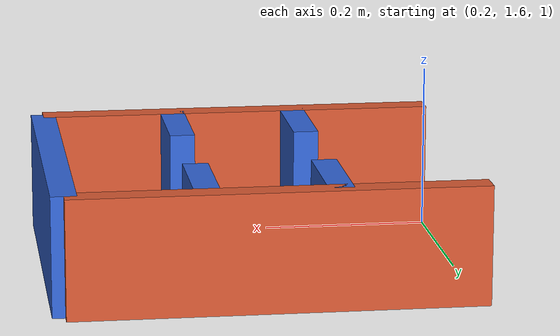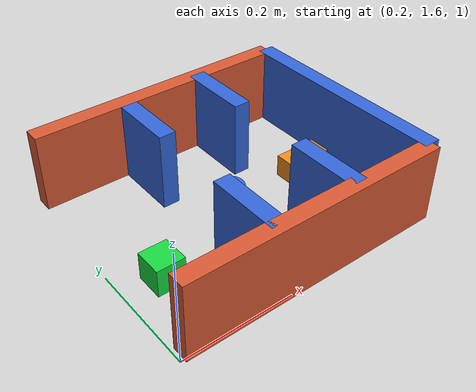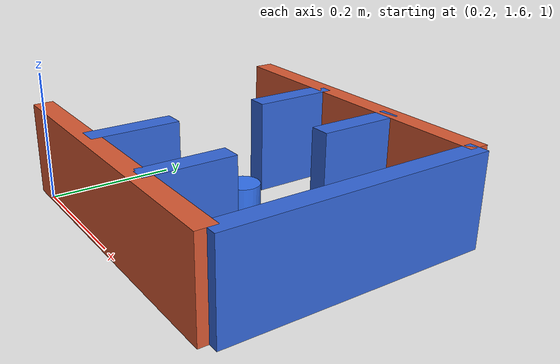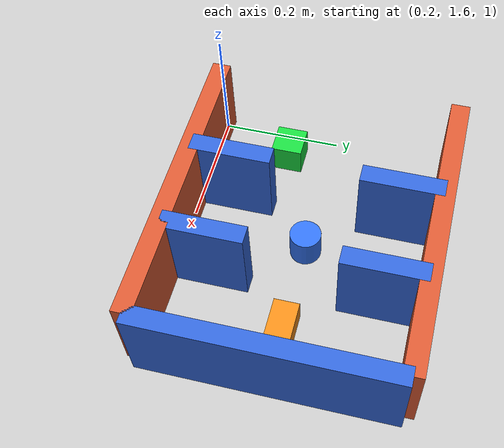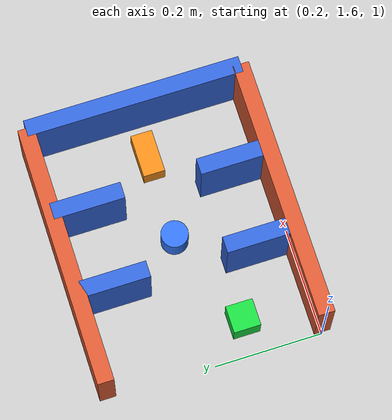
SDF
<sdf version="1.9">
 <world name="multi_object_sequential_env">
  <physics name="1ms" type="ignored">
   <max_step_size>0.001</max_step_size>
   <real_time_factor>1.0</real_time_factor>
   <real_time_update_rate>1000</real_time_update_rate>
  </physics>
  <plugin name="gz::sim::systems::Physics" filename="gz-sim-physics-system"/>
  <plugin name="gz::sim::systems::UserCommands" filename="gz-sim-user-commands-system"/>
  <plugin name="gz::sim::systems::Sensors" filename="gz-sim-sensors-system">
   <render_engine>ogre2</render_engine>
  </plugin>
  <plugin name="gz::sim::systems::SceneBroadcaster" filename="gz-sim-scene-broadcaster-system"/>
  <scene>
   <ambient>0.45 0.45 0.45 1</ambient>
   <background>0.70 0.72 0.74 1</background>
   <shadows>true</shadows>
  </scene>
  <gravity>0 0 -9.8</gravity>
  <include><uri>model://ground_plane</uri></include>
  <include><uri>model://sun</uri></include>
  <model name="corridor_wall_left">
   <static>true</static>
   <pose>0.44 1.60 1.085 0 0 0</pose>
   <link name="link">
    <collision name="collision"><geometry><box><size>0.48 0.03 0.14</size></box></geometry></collision>
    <visual name="visual">
     <geometry><box><size>0.48 0.03 0.14</size></box></geometry>
     <material><ambient>0.85 0.35 0.20 1</ambient><diffuse>0.85 0.35 0.20 1</diffuse></material>
    </visual>
   </link>
  </model>
  <model name="corridor_wall_right">
   <static>true</static>
   <pose>0.44 2.00 1.085 0 0 0</pose>
   <link name="link">
    <collision name="collision"><geometry><box><size>0.48 0.03 0.14</size></box></geometry></collision>
    <visual name="visual">
     <geometry><box><size>0.48 0.03 0.14</size></box></geometry>
     <material><ambient>0.85 0.35 0.20 1</ambient><diffuse>0.85 0.35 0.20 1</diffuse></material>
    </visual>
   </link>
  </model>
  <model name="barrier_a_left">
   <static>true</static>
   <pose>0.37 1.665 1.085 0 0 0</pose>
   <link name="link">
    <collision name="collision"><geometry><box><size>0.03 0.13 0.14</size></box></geometry></collision>
    <visual name="visual">
     <geometry><box><size>0.03 0.13 0.14</size></box></geometry>
     <material><ambient>0.20 0.40 0.85 1</ambient><diffuse>0.20 0.40 0.85 1</diffuse></material>
    </visual>
   </link>
  </model>
  <model name="barrier_a_right">
   <static>true</static>
   <pose>0.37 1.935 1.085 0 0 0</pose>
   <link name="link">
    <collision name="collision"><geometry><box><size>0.03 0.13 0.14</size></box></geometry></collision>
    <visual name="visual">
     <geometry><box><size>0.03 0.13 0.14</size></box></geometry>
     <material><ambient>0.20 0.40 0.85 1</ambient><diffuse>0.20 0.40 0.85 1</diffuse></material>
    </visual>
   </link>
  </model>
  <model name="barrier_b_left">
   <static>true</static>
   <pose>0.52 1.665 1.085 0 0 0</pose>
   <link name="link">
    <collision name="collision"><geometry><box><size>0.03 0.13 0.14</size></box></geometry></collision>
    <visual name="visual">
     <geometry><box><size>0.03 0.13 0.14</size></box></geometry>
     <material><ambient>0.20 0.40 0.85 1</ambient><diffuse>0.20 0.40 0.85 1</diffuse></material>
    </visual>
   </link>
  </model>
  <model name="barrier_b_right">
   <static>true</static>
   <pose>0.52 1.935 1.085 0 0 0</pose>
   <link name="link">
    <collision name="collision"><geometry><box><size>0.03 0.13 0.14</size></box></geometry></collision>
    <visual name="visual">
     <geometry><box><size>0.03 0.13 0.14</size></box></geometry>
     <material><ambient>0.20 0.40 0.85 1</ambient><diffuse>0.20 0.40 0.85 1</diffuse></material>
    </visual>
   </link>
  </model>
  <model name="barrier_c">
   <static>true</static>
   <pose>0.68 1.800 1.085 0 0 0</pose>
   <link name="link">
    <collision name="collision"><geometry><box><size>0.03 0.40 0.14</size></box></geometry></collision>
    <visual name="visual">
     <geometry><box><size>0.03 0.40 0.14</size></box></geometry>
     <material><ambient>0.20 0.40 0.85 1</ambient><diffuse>0.20 0.40 0.85 1</diffuse></material>
    </visual>
   </link>
  </model>
  <model name="target_cube">
   <static>false</static>
   <pose>0.26 1.73 1.040 0 0 0</pose>
   <link name="link">
    <inertial>
     <mass>0.12</mass>
     <inertia>
      <ixx>0.00005</ixx>
      <ixy>0.0</ixy>
      <ixz>0.0</ixz>
      <iyy>0.00005</iyy>
      <iyz>0.0</iyz>
      <izz>0.00005</izz>
     </inertia>
    </inertial>
    <collision name="collision"><geometry><box><size>0.05 0.05 0.05</size></box></geometry></collision>
    <visual name="visual">
     <geometry><box><size>0.05 0.05 0.05</size></box></geometry>
     <material>
      <ambient>0.10 0.85 0.25 1</ambient>
      <diffuse>0.10 0.85 0.25 1</diffuse>
      <specular>0.05 0.05 0.05 1</specular>
     </material>
    </visual>
   </link>
  </model>
  <model name="target_cylinder">
   <static>false</static>
   <pose>0.44 1.80 1.040 0 0 0</pose>
   <link name="link">
    <inertial>
     <mass>0.12</mass>
     <inertia>
      <ixx>0.00005</ixx>
      <ixy>0.0</ixy>
      <ixz>0.0</ixz>
      <iyy>0.00005</iyy>
      <iyz>0.0</iyz>
      <izz>0.00004</izz>
     </inertia>
    </inertial>
    <collision name="collision">
     <geometry><cylinder><radius>0.025</radius><length>0.05</length></cylinder></geometry>
    </collision>
    <visual name="visual">
     <geometry><cylinder><radius>0.025</radius><length>0.05</length></cylinder></geometry>
     <material>
      <ambient>0.20 0.45 0.95 1</ambient>
      <diffuse>0.20 0.45 0.95 1</diffuse>
      <specular>0.05 0.05 0.05 1</specular>
     </material>
    </visual>
   </link>
  </model>
  <model name="target_rod">
   <static>false</static>
   <pose>0.60 1.80 1.040 0 0 0</pose>
   <link name="link">
    <inertial>
     <mass>0.12</mass>
     <inertia>
      <ixx>0.00003</ixx>
      <ixy>0.0</ixy>
      <ixz>0.0</ixz>
      <iyy>0.00008</iyy>
      <iyz>0.0</iyz>
      <izz>0.00008</izz>
     </inertia>
    </inertial>
    <collision name="collision"><geometry><box><size>0.08 0.04 0.04</size></box></geometry></collision>
    <visual name="visual">
     <geometry><box><size>0.08 0.04 0.04</size></box></geometry>
     <material>
      <ambient>0.95 0.55 0.10 1</ambient>
      <diffuse>0.95 0.55 0.10 1</diffuse>
      <specular>0.05 0.05 0.05 1</specular>
     </material>
    </visual>
   </link>
  </model>
 </world>
</sdf>
